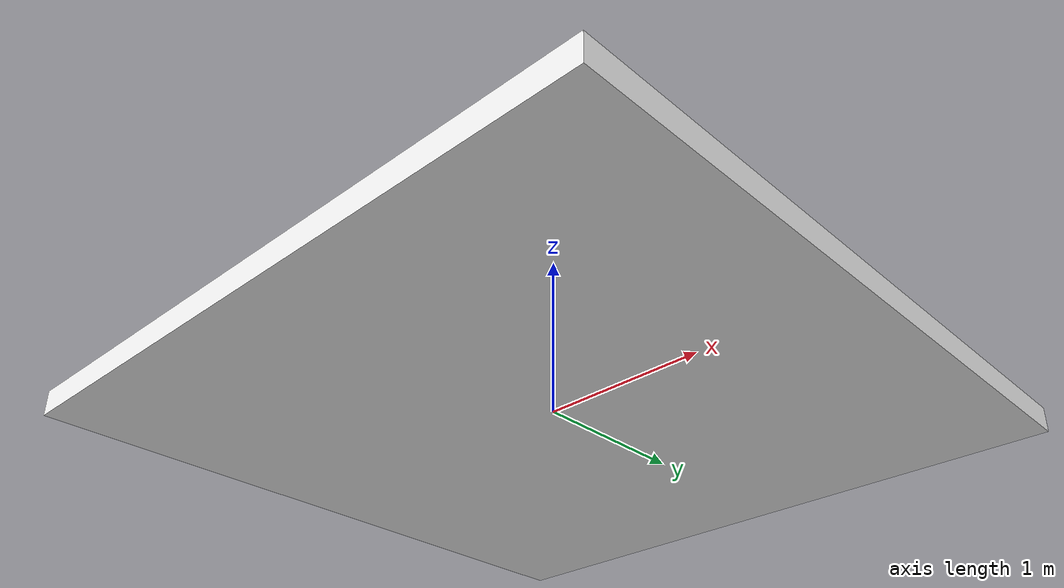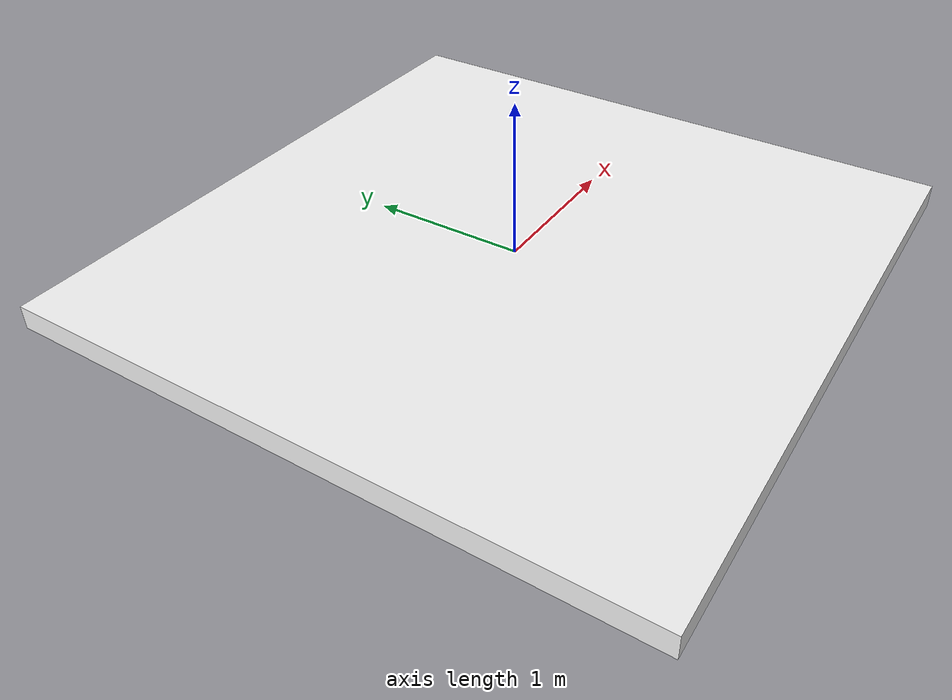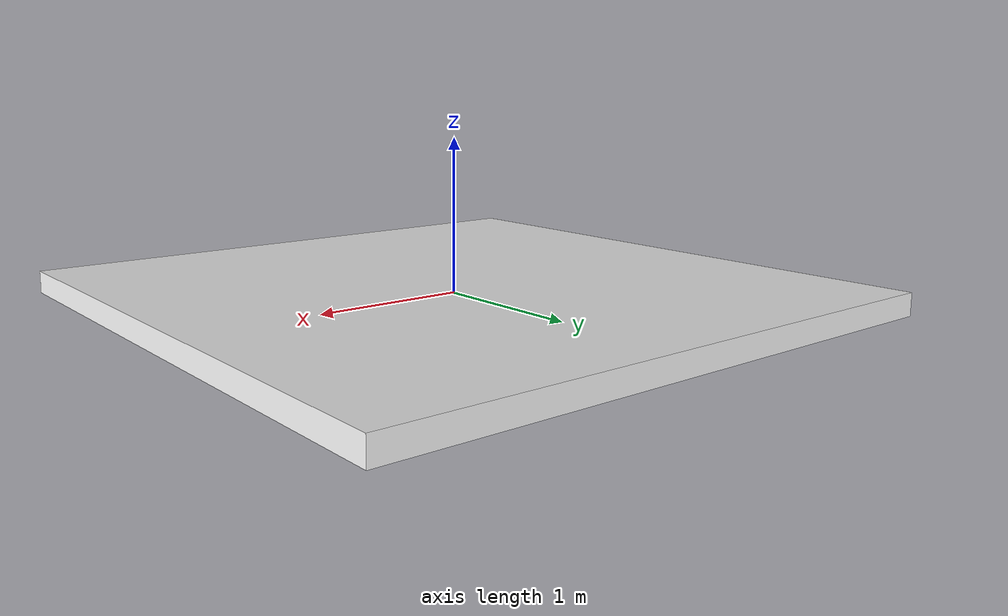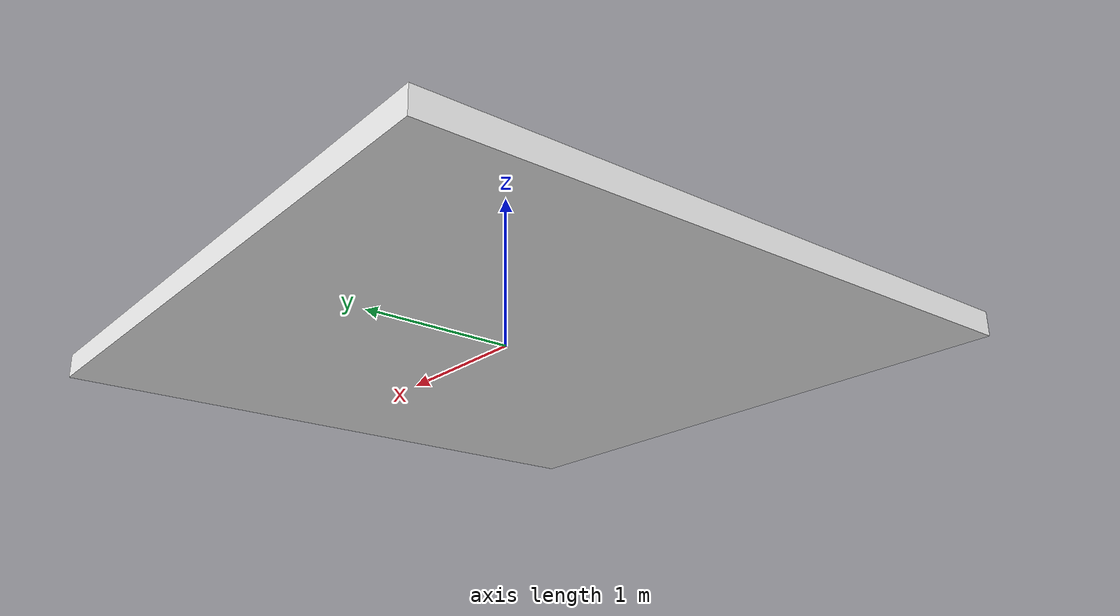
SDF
<?xml version="1.0" ?>
<sdf version="1.6">
  <model name="ceiling_slab">
    <static>true</static>
    <link name="ceiling_link">
      <collision name="ceiling_col">
        <geometry><box><size>4.0 4.0 0.15</size></box></geometry>
      </collision>
      <visual name="ceiling_vis">
        <geometry><box><size>4.0 4.0 0.15</size></box></geometry>
        <material>
          <!-- Clean premium white ceiling, slight sheen -->
          <ambient>0.90 0.90 0.90 1</ambient>
          <diffuse>0.95 0.95 0.95 1</diffuse>
          <specular>0.08 0.08 0.08 1</specular>
        </material>
      </visual>
    </link>
  </model>
</sdf>
